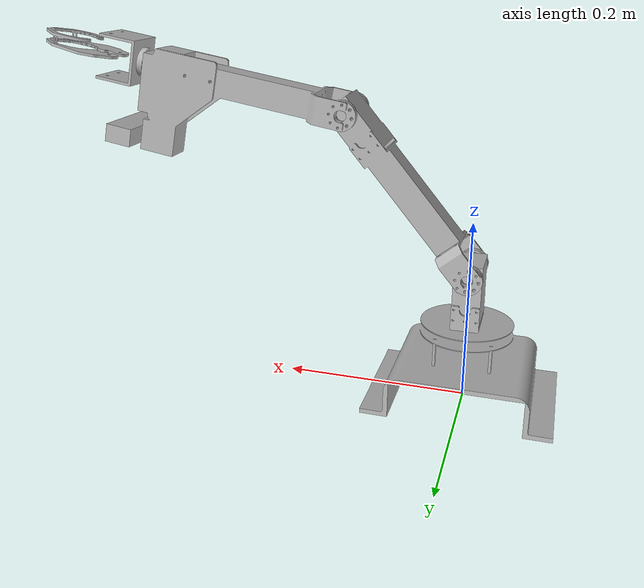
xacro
<?xml version="1.0" ?>
<robot name="angle_excurate_arm_ver2" xmlns:xacro="http://www.ros.org/wiki/xacro">

<xacro:include filename="$(find angle_excurate_arm_ver2_description)/urdf/materials.xacro" />
<xacro:include filename="$(find angle_excurate_arm_ver2_description)/urdf/angle_excurate_arm_ver2.trans" />
<xacro:include filename="$(find angle_excurate_arm_ver2_description)/urdf/angle_excurate_arm_ver2.gazebo" />
<link name="base_link">
  <inertial>
    <origin xyz="1.8745796736605483e-12 -2.6846557552026664e-18 0.04000014999999999" rpy="0 0 0"/>
    <mass value="7.925585093654501e-07"/>
    <inertia ixx="0.0" iyy="0.0" izz="0.0" ixy="-0.0" iyz="-0.0" ixz="-0.0"/>
  </inertial>
  <visual>
    <origin xyz="0 0 0" rpy="0 0 0"/>
    <geometry>
      <mesh filename="file://$(find angle_excurate_arm_ver2_description)/meshes/base_link.stl" scale="0.001 0.001 0.001"/>
    </geometry>
    <material name="silver"/>
  </visual>
  <collision>
    <origin xyz="0 0 0" rpy="0 0 0"/>
    <geometry>
      <mesh filename="file://$(find angle_excurate_arm_ver2_description)/meshes/base_link.stl" scale="0.001 0.001 0.001"/>
    </geometry>
  </collision>
</link>

<link name="base_link2_v2_1">
  <inertial>
    <origin xyz="-5.553953613832533e-14 1.6607364926774611e-07 0.04484512943360931" rpy="0 0 0"/>
    <mass value="0.8724221516717809"/>
    <inertia ixx="0.000636" iyy="0.000529" izz="0.000308" ixy="0.0" iyz="0.0" ixz="0.0"/>
  </inertial>
  <visual>
    <origin xyz="0.0 -0.0 -0.076" rpy="0 0 0"/>
    <geometry>
      <mesh filename="file://$(find angle_excurate_arm_ver2_description)/meshes/base_link2_v2_1.stl" scale="0.001 0.001 0.001"/>
    </geometry>
    <material name="silver"/>
  </visual>
  <collision>
    <origin xyz="0.0 -0.0 -0.076" rpy="0 0 0"/>
    <geometry>
      <mesh filename="file://$(find angle_excurate_arm_ver2_description)/meshes/base_link2_v2_1.stl" scale="0.001 0.001 0.001"/>
    </geometry>
  </collision>
</link>

<link name="link3_v1_1">
  <inertial>
    <origin xyz="0.08484392825641267 8.013781706481686e-08 0.10111325630955267" rpy="0 0 0"/>
    <mass value="1.7894494256516058"/>
    <inertia ixx="0.00475" iyy="0.007559" izz="0.003484" ixy="-0.0" iyz="-0.0" ixz="-0.003589"/>
  </inertial>
  <visual>
    <origin xyz="0.0 0.0 -0.146342" rpy="0 0 0"/>
    <geometry>
      <mesh filename="file://$(find angle_excurate_arm_ver2_description)/meshes/link3_v1_1.stl" scale="0.001 0.001 0.001"/>
    </geometry>
    <material name="silver"/>
  </visual>
  <collision>
    <origin xyz="0.0 0.0 -0.146342" rpy="0 0 0"/>
    <geometry>
      <mesh filename="file://$(find angle_excurate_arm_ver2_description)/meshes/link3_v1_1.stl" scale="0.001 0.001 0.001"/>
    </geometry>
  </collision>
</link>

<link name="link4_v1_1">
  <inertial>
    <origin xyz="0.15672887830534532 1.2952542993477877e-09 0.010698555149691258" rpy="0 0 0"/>
    <mass value="2.6308677332376194"/>
    <inertia ixx="0.002021" iyy="0.01307" izz="0.011727" ixy="-0.0" iyz="0.0" ixz="0.000564"/>
  </inertial>
  <visual>
    <origin xyz="-0.137776 0.0 -0.310538" rpy="0 0 0"/>
    <geometry>
      <mesh filename="file://$(find angle_excurate_arm_ver2_description)/meshes/link4_v1_1.stl" scale="0.001 0.001 0.001"/>
    </geometry>
    <material name="silver"/>
  </visual>
  <collision>
    <origin xyz="-0.137776 0.0 -0.310538" rpy="0 0 0"/>
    <geometry>
      <mesh filename="file://$(find angle_excurate_arm_ver2_description)/meshes/link4_v1_1.stl" scale="0.001 0.001 0.001"/>
    </geometry>
  </collision>
</link>

<link name="robot_ver7_link_4_v1_1">
  <inertial>
    <origin xyz="0.017892495703135003 -1.6181256950123296e-09 0.003154951933928285" rpy="0 0 0"/>
    <mass value="0.1836674229836172"/>
    <inertia ixx="9.9e-05" iyy="0.000103" izz="7.2e-05" ixy="0.0" iyz="0.0" ixz="5e-06"/>
  </inertial>
  <visual>
    <origin xyz="-0.36806 0.0 -0.352664" rpy="0 0 0"/>
    <geometry>
      <mesh filename="file://$(find angle_excurate_arm_ver2_description)/meshes/robot_ver7_link_4_v1_1.stl" scale="0.001 0.001 0.001"/>
    </geometry>
    <material name="silver"/>
  </visual>
  <collision>
    <origin xyz="-0.36806 0.0 -0.352664" rpy="0 0 0"/>
    <geometry>
      <mesh filename="file://$(find angle_excurate_arm_ver2_description)/meshes/robot_ver7_link_4_v1_1.stl" scale="0.001 0.001 0.001"/>
    </geometry>
  </collision>
</link>

<link name="robot_ver7_grap2_2_v1_1">
  <inertial>
    <origin xyz="0.031884649247926056 -0.0055870722111976065 0.00827502813362807" rpy="0 0 0"/>
    <mass value="0.04062678364092949"/>
    <inertia ixx="4e-06" iyy="2.6e-05" izz="2.5e-05" ixy="-0.0" iyz="-0.0" ixz="-6e-06"/>
  </inertial>
  <visual>
    <origin xyz="-0.409619 0.0125 -0.359992" rpy="0 0 0"/>
    <geometry>
      <mesh filename="file://$(find angle_excurate_arm_ver2_description)/meshes/robot_ver7_grap2_2_v1_1.stl" scale="0.001 0.001 0.001"/>
    </geometry>
    <material name="silver"/>
  </visual>
  <collision>
    <origin xyz="-0.409619 0.0125 -0.359992" rpy="0 0 0"/>
    <geometry>
      <mesh filename="file://$(find angle_excurate_arm_ver2_description)/meshes/robot_ver7_grap2_2_v1_1.stl" scale="0.001 0.001 0.001"/>
    </geometry>
  </collision>
</link>

<link name="robot_ver7_grap1_2_v1_1">
  <inertial>
    <origin xyz="0.03188464924792761 0.0055870689749490735 0.008275028133627904" rpy="0 0 0"/>
    <mass value="0.040626783640931655"/>
    <inertia ixx="4e-06" iyy="2.6e-05" izz="2.5e-05" ixy="0.0" iyz="0.0" ixz="-6e-06"/>
  </inertial>
  <visual>
    <origin xyz="-0.409619 -0.0125 -0.359992" rpy="0 0 0"/>
    <geometry>
      <mesh filename="file://$(find angle_excurate_arm_ver2_description)/meshes/robot_ver7_grap1_2_v1_1.stl" scale="0.001 0.001 0.001"/>
    </geometry>
    <material name="silver"/>
  </visual>
  <collision>
    <origin xyz="-0.409619 -0.0125 -0.359992" rpy="0 0 0"/>
    <geometry>
      <mesh filename="file://$(find angle_excurate_arm_ver2_description)/meshes/robot_ver7_grap1_2_v1_1.stl" scale="0.001 0.001 0.001"/>
    </geometry>
  </collision>
</link>

<link name="base_link_2_1">
  <inertial>
    <origin xyz="-7.6976007193707615e-16 1.23599521765243e-16 -0.010056885130538304" rpy="0 0 0"/>
    <mass value="1.6067306789990348"/>
    <inertia ixx="0.003521" iyy="0.006468" izz="0.008802" ixy="0.0" iyz="-0.0" ixz="0.0"/>
  </inertial>
  <visual>
    <origin xyz="-0.0 -0.0 -0.04" rpy="0 0 0"/>
    <geometry>
      <mesh filename="file://$(find angle_excurate_arm_ver2_description)/meshes/base_link_2_1.stl" scale="0.001 0.001 0.001"/>
    </geometry>
    <material name="silver"/>
  </visual>
  <collision>
    <origin xyz="-0.0 -0.0 -0.04" rpy="0 0 0"/>
    <geometry>
      <mesh filename="file://$(find angle_excurate_arm_ver2_description)/meshes/base_link_2_1.stl" scale="0.001 0.001 0.001"/>
    </geometry>
  </collision>
</link>

<link name="camera_1">
  <inertial>
    <origin xyz="0.01477231181394828 2.1629406603551614e-08 0.002604519615801326" rpy="0 0 0"/>
    <mass value="0.4003499999999954"/>
    <inertia ixx="0.000255" iyy="4.3e-05" izz="0.000271" ixy="-0.0" iyz="-0.0" ixz="-3e-06"/>
  </inertial>
  <visual>
    <origin xyz="-0.37354 -0.0 -0.274937" rpy="0 0 0"/>
    <geometry>
      <mesh filename="file://$(find angle_excurate_arm_ver2_description)/meshes/camera_1.stl" scale="0.001 0.001 0.001"/>
    </geometry>
    <material name="silver"/>
  </visual>
  <collision>
    <origin xyz="-0.37354 -0.0 -0.274937" rpy="0 0 0"/>
    <geometry>
      <mesh filename="file://$(find angle_excurate_arm_ver2_description)/meshes/camera_1.stl" scale="0.001 0.001 0.001"/>
    </geometry>
  </collision>
</link>

<joint name="Revolute 1" type="revolute">
  <origin xyz="-0.0 0.0 0.036" rpy="0 0 0"/>
  <parent link="base_link_2_1"/>
  <child link="base_link2_v2_1"/>
  <axis xyz="0.0 -0.0 1.0"/>
  <limit upper="3.141593" lower="0.0" effort="100" velocity="100"/>
</joint>

<joint name="Revolute 2" type="revolute">
  <origin xyz="0.0 -0.0 0.070342" rpy="0 0 0"/>
  <parent link="base_link2_v2_1"/>
  <child link="link3_v1_1"/>
  <axis xyz="-0.0 -1.0 0.0"/>
  <limit upper="2.094395" lower="0.0" effort="100" velocity="100"/>
</joint>

<joint name="Revolute 3" type="revolute">
  <origin xyz="0.137776 0.0 0.164196" rpy="0 0 0"/>
  <parent link="link3_v1_1"/>
  <child link="link4_v1_1"/>
  <axis xyz="-0.0 -1.0 0.0"/>
  <limit upper="2.617994" lower="0.0" effort="100" velocity="100"/>
</joint>

<joint name="Revolute 4" type="revolute">
  <origin xyz="0.230284 0.0 0.042126" rpy="0 0 0"/>
  <parent link="link4_v1_1"/>
  <child link="robot_ver7_link_4_v1_1"/>
  <axis xyz="0.984808 0.0 0.173648"/>
  <limit upper="3.141593" lower="0.0" effort="100" velocity="100"/>
</joint>

<joint name="Revolute 5" type="revolute">
  <origin xyz="0.041559 -0.0125 0.007328" rpy="0 0 0"/>
  <parent link="robot_ver7_link_4_v1_1"/>
  <child link="robot_ver7_grap2_2_v1_1"/>
  <axis xyz="0.173648 -0.0 -0.984808"/>
  <limit upper="1.22173" lower="0.0" effort="100" velocity="100"/>
</joint>

<joint name="Revolute 6" type="revolute">
  <origin xyz="0.041559 0.0125 0.007328" rpy="0 0 0"/>
  <parent link="robot_ver7_link_4_v1_1"/>
  <child link="robot_ver7_grap1_2_v1_1"/>
  <axis xyz="-0.173648 0.0 0.984808"/>
  <limit upper="1.22173" lower="0.0" effort="100" velocity="100"/>
</joint>

<joint name="Rigid 8" type="fixed">
  <origin xyz="0.0 0.0 0.04" rpy="0 0 0"/>
  <parent link="base_link"/>
  <child link="base_link_2_1"/>
</joint>

<joint name="Rigid 11" type="fixed">
  <origin xyz="0.235764 0.0 -0.035601" rpy="0 0 0"/>
  <parent link="link4_v1_1"/>
  <child link="camera_1"/>
</joint>

</robot>

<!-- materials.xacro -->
<robot name="angle_excurate_arm_ver2" xmlns:xacro="http://www.ros.org/wiki/xacro" >

<material name="silver">
  <color rgba="0.700 0.700 0.700 1.000"/>
</material>

</robot>

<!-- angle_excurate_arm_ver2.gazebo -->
<robot name="angle_excurate_arm_ver2" xmlns:xacro="http://www.ros.org/wiki/xacro" >

<xacro:property name="body_color" value="Gazebo/Silver" />

<gazebo>
  <plugin name="control" filename="libgazebo_ros_control.so"/>
</gazebo>
<gazebo reference="base_link">
  <material>${body_color}</material>
  <mu1>0.2</mu1>
  <mu2>0.2</mu2>
  <self_collide>true</self_collide>
  <gravity>true</gravity>
</gazebo>

<gazebo reference="base_link2_v2_1">
  <material>${body_color}</material>
  <mu1>0.2</mu1>
  <mu2>0.2</mu2>
  <self_collide>true</self_collide>
</gazebo>

<gazebo reference="link3_v1_1">
  <material>${body_color}</material>
  <mu1>0.2</mu1>
  <mu2>0.2</mu2>
  <self_collide>true</self_collide>
</gazebo>

<gazebo reference="link4_v1_1">
  <material>${body_color}</material>
  <mu1>0.2</mu1>
  <mu2>0.2</mu2>
  <self_collide>true</self_collide>
</gazebo>

<gazebo reference="robot_ver7_link_4_v1_1">
  <material>${body_color}</material>
  <mu1>0.2</mu1>
  <mu2>0.2</mu2>
  <self_collide>true</self_collide>
</gazebo>

<gazebo reference="robot_ver7_grap2_2_v1_1">
  <material>${body_color}</material>
  <mu1>0.2</mu1>
  <mu2>0.2</mu2>
  <self_collide>true</self_collide>
</gazebo>

<gazebo reference="robot_ver7_grap1_2_v1_1">
  <material>${body_color}</material>
  <mu1>0.2</mu1>
  <mu2>0.2</mu2>
  <self_collide>true</self_collide>
</gazebo>

<gazebo reference="base_link_2_1">
  <material>${body_color}</material>
  <mu1>0.2</mu1>
  <mu2>0.2</mu2>
  <self_collide>true</self_collide>
</gazebo>

<gazebo reference="camera_1">
  <material>${body_color}</material>
  <mu1>0.2</mu1>
  <mu2>0.2</mu2>
  <self_collide>true</self_collide>
</gazebo>

</robot>
